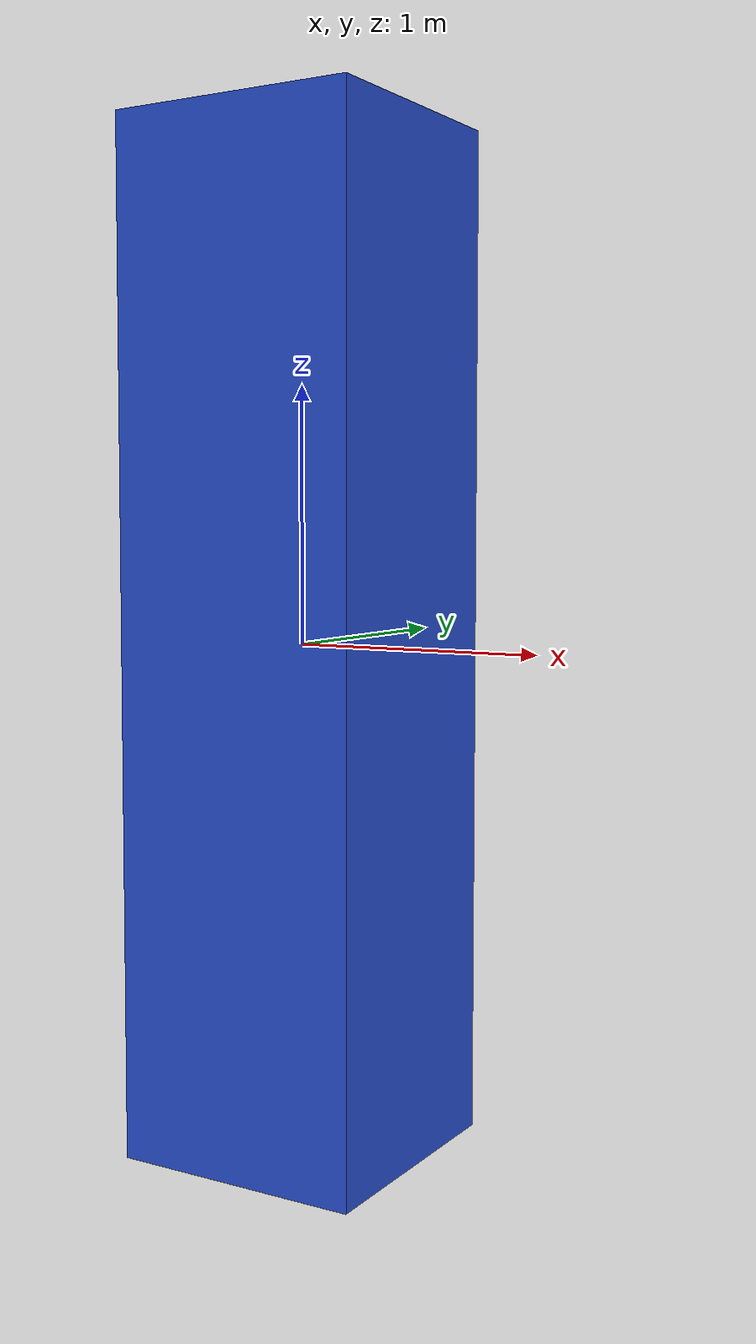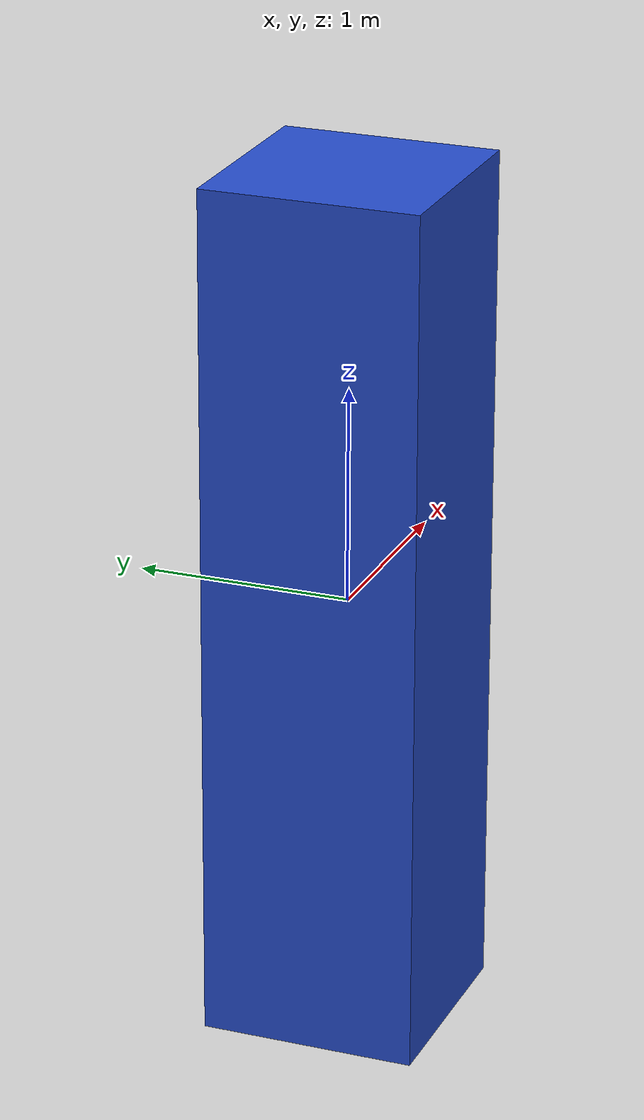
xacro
<?xml version="1.0"?>
<robot name="$(arg name)" xmlns:xacro="http://ros.org/wiki/xacro">
  <xacro:arg name="x" default="0"/>
  <xacro:arg name="y" default="0"/>
  <xacro:arg name="z" default="0"/>
  <xacro:arg name="name" default="box"/>
  <link name="$(arg name)_link">
    <inertial>
      <origin xyz="$(arg x) $(arg y) $(arg z)" />
      <mass value="1.0" />
      <inertia  ixx="1.0" ixy="0.0"  ixz="0.0"  iyy="100.0"  iyz="0.0"  izz="1.0" />
    </inertial>
    <visual>
      <origin xyz="$(arg x) $(arg y) $(arg z)"/>
      <geometry>
        <box size="1 1 4" />
      </geometry>
    </visual>
    <collision>
      <origin xyz="$(arg x) $(arg y) $(arg z)"/>
      <geometry>
        <box size="1 1 4" />
      </geometry>
    </collision>
  </link>
  <gazebo reference="$(arg name)_link">
    <material>Gazebo/Blue</material>
  </gazebo>
</robot>
